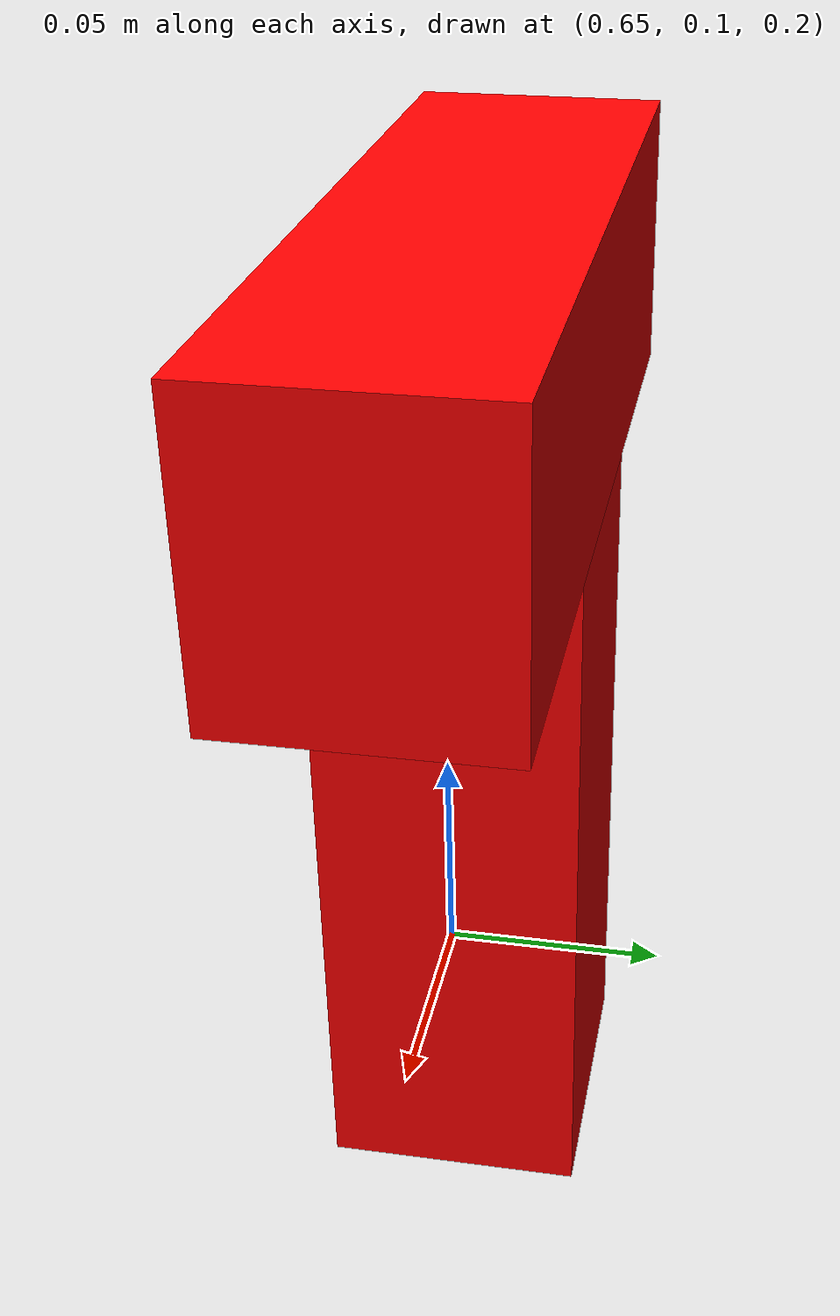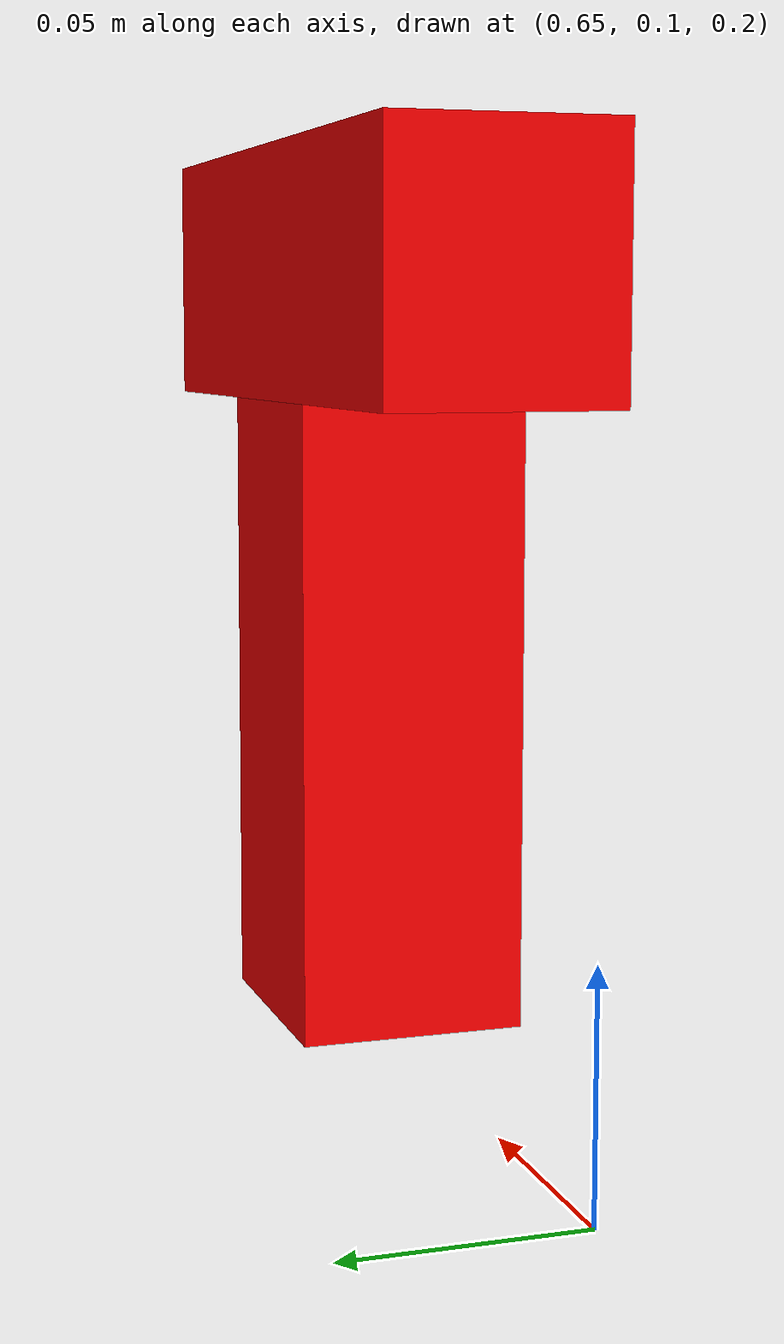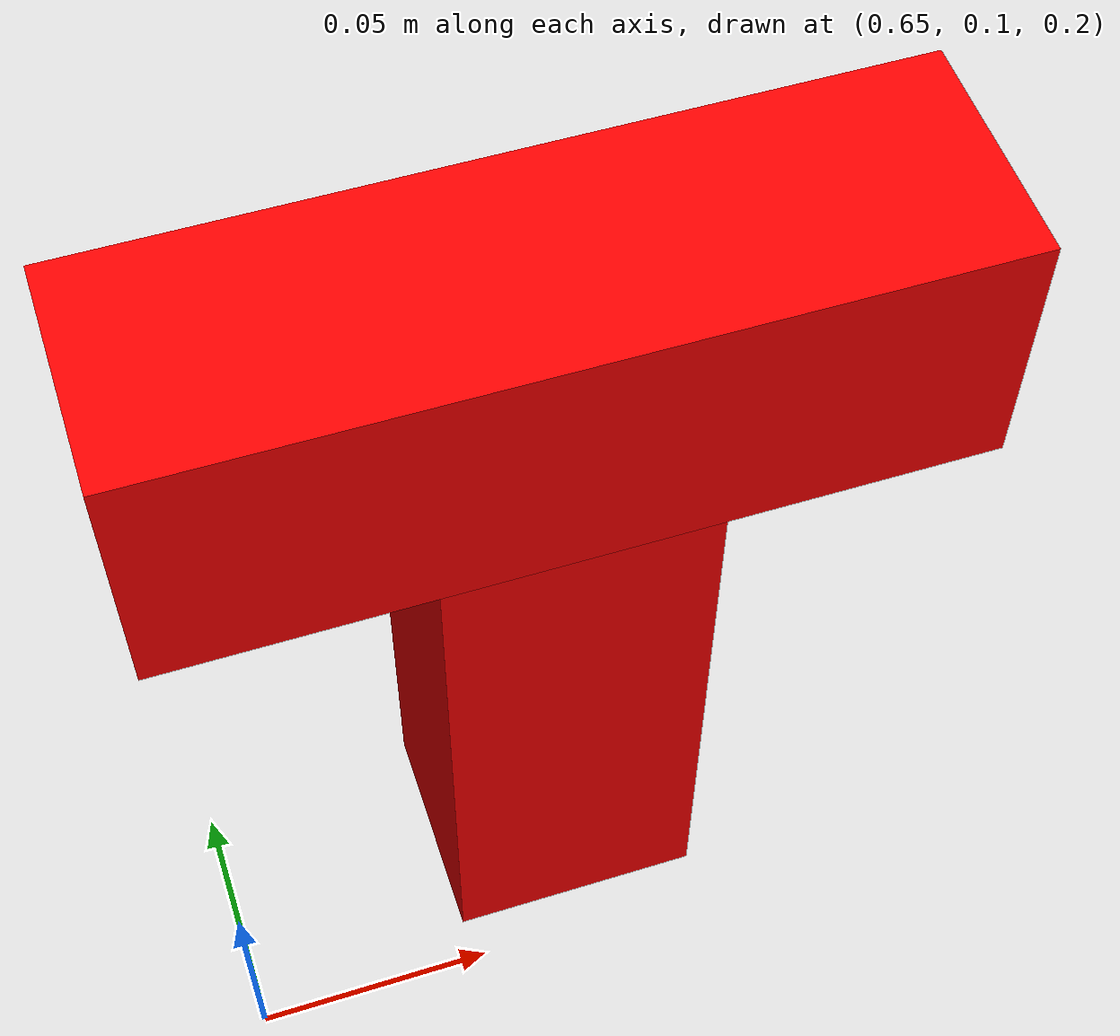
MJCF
<mujoco model="T2">
  <option gravity="0 0 0"/>
  <worldbody>
    <body name="T2" pos="0.72 0.12 0.225">
        <joint name="T2_free" type="free"/>
        <geom name="T2_stem" type="box" size="0.025 0.0225 0.0625" pos="0 0 0.0625" rgba="1 0 0 1" contype="1" conaffinity="1"/>
        <geom name="T2_bar" type="box" size="0.075 0.0225 0.025" pos="0 0 0.15" rgba="1 0 0 1" contype="1" conaffinity="1"/>
    </body>
  </worldbody>
</mujoco>
